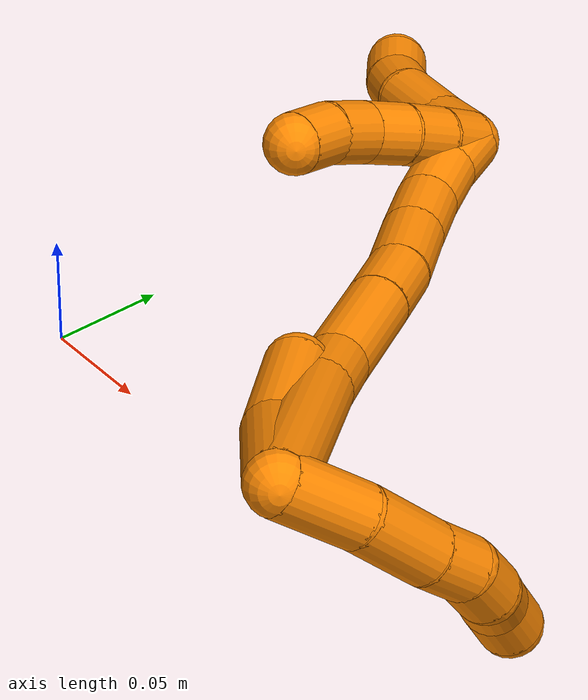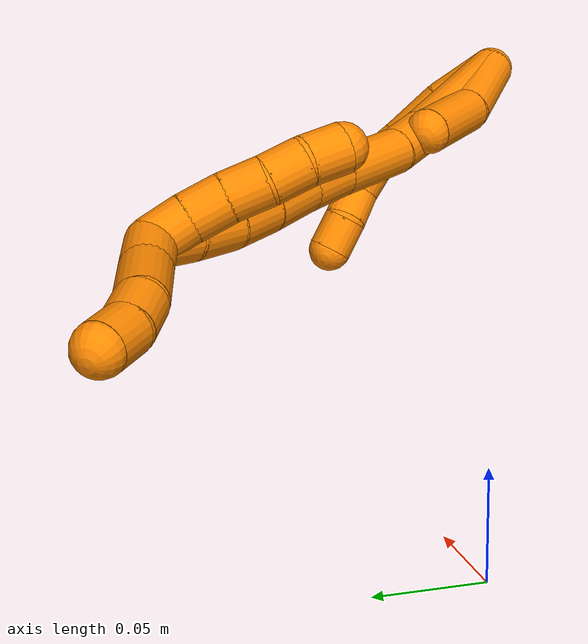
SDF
<sdf version="1.7">
 <world name="default">
  <model name="19">
   <static>0</static>
   <link name="19">
    <collision name="collision-cylinder-e_1_2_8">
     <pose>0.012902 0.010135 -0.005756 -2.0873 0.83612 -1.30378</pose>
     <geometry><cylinder><radius>0.0125</radius><length>0.034774</length></cylinder></geometry>
     <surface>
      <friction><ode><mu>1.16</mu><mu2>1.16</mu2><slip1>0</slip1><slip2>0</slip2></ode></friction>
      <contact><ode><kp>1e+06</kp><kd>1</kd><max_vel>0</max_vel><min_depth>0.001</min_depth></ode></contact>
     </surface>
    </collision>
    <visual name="visual-cylinder-e_1_2_8">
     <pose>0.012902 0.010135 -0.005756 -2.0873 0.83612 -1.30378</pose>
     <geometry><cylinder><radius>0.0125</radius><length>0.034774</length></cylinder></geometry>
     <material><ambient>0.996078 0.537255 0 1</ambient></material>
    </visual>
    <collision name="collision-cylinder-e_2_8_9">
     <pose>0.039117 0.028082 -0.01881 -2.32224 0.894214 -1.66975</pose>
     <geometry><cylinder><radius>0.0125</radius><length>0.034148</length></cylinder></geometry>
     <surface>
      <friction><ode><mu>1.16</mu><mu2>1.16</mu2><slip1>0</slip1><slip2>0</slip2></ode></friction>
      <contact><ode><kp>1e+06</kp><kd>1</kd><max_vel>0</max_vel><min_depth>0.001</min_depth></ode></contact>
     </surface>
    </collision>
    <visual name="visual-cylinder-e_2_8_9">
     <pose>0.039117 0.028082 -0.01881 -2.32224 0.894214 -1.66975</pose>
     <geometry><cylinder><radius>0.0125</radius><length>0.034148</length></cylinder></geometry>
     <material><ambient>0.996078 0.537255 0 1</ambient></material>
    </visual>
    <collision name="collision-cylinder-e_3_9_10">
     <pose>0.059689 0.040736 -0.031119 -2.37323 0.805841 -1.62369</pose>
     <geometry><cylinder><radius>0.0125</radius><length>0.020124</length></cylinder></geometry>
     <surface>
      <friction><ode><mu>1.16</mu><mu2>1.16</mu2><slip1>0</slip1><slip2>0</slip2></ode></friction>
      <contact><ode><kp>1e+06</kp><kd>1</kd><max_vel>0</max_vel><min_depth>0.001</min_depth></ode></contact>
     </surface>
    </collision>
    <visual name="visual-cylinder-e_3_9_10">
     <pose>0.059689 0.040736 -0.031119 -2.37323 0.805841 -1.62369</pose>
     <geometry><cylinder><radius>0.0125</radius><length>0.020124</length></cylinder></geometry>
     <material><ambient>0.996078 0.537255 0 1</ambient></material>
    </visual>
    <collision name="collision-cylinder-e_4_10_11">
     <pose>0.074733 0.047328 -0.042221 -2.86185 0.887513 -2.56571</pose>
     <geometry><cylinder><radius>0.0125</radius><length>0.020079</length></cylinder></geometry>
     <surface>
      <friction><ode><mu>1.16</mu><mu2>1.16</mu2><slip1>0</slip1><slip2>0</slip2></ode></friction>
      <contact><ode><kp>1e+06</kp><kd>1</kd><max_vel>0</max_vel><min_depth>0.001</min_depth></ode></contact>
     </surface>
    </collision>
    <visual name="visual-cylinder-e_4_10_11">
     <pose>0.074733 0.047328 -0.042221 -2.86185 0.887513 -2.56571</pose>
     <geometry><cylinder><radius>0.0125</radius><length>0.020079</length></cylinder></geometry>
     <material><ambient>0.996078 0.537255 0 1</ambient></material>
    </visual>
    <collision name="collision-cylinder-e_5_11_12">
     <pose>0.088408 0.049046 -0.056562 3.13767 0.620035 3.12934</pose>
     <geometry><cylinder><radius>0.0125</radius><length>0.020272</length></cylinder></geometry>
     <surface>
      <friction><ode><mu>1.16</mu><mu2>1.16</mu2><slip1>0</slip1><slip2>0</slip2></ode></friction>
      <contact><ode><kp>1e+06</kp><kd>1</kd><max_vel>0</max_vel><min_depth>0.001</min_depth></ode></contact>
     </surface>
    </collision>
    <visual name="visual-cylinder-e_5_11_12">
     <pose>0.088408 0.049046 -0.056562 3.13767 0.620035 3.12934</pose>
     <geometry><cylinder><radius>0.0125</radius><length>0.020272</length></cylinder></geometry>
     <material><ambient>0.996078 0.537255 0 1</ambient></material>
    </visual>
    <collision name="collision-cylinder-e_6_12_6">
     <pose>0.102105 0.049957 -0.071466 -3.00073 0.860005 -2.83633</pose>
     <geometry><cylinder><radius>0.0125</radius><length>0.020603</length></cylinder></geometry>
     <surface>
      <friction><ode><mu>1.16</mu><mu2>1.16</mu2><slip1>0</slip1><slip2>0</slip2></ode></friction>
      <contact><ode><kp>1e+06</kp><kd>1</kd><max_vel>0</max_vel><min_depth>0.001</min_depth></ode></contact>
     </surface>
    </collision>
    <visual name="visual-cylinder-e_6_12_6">
     <pose>0.102105 0.049957 -0.071466 -3.00073 0.860005 -2.83633</pose>
     <geometry><cylinder><radius>0.0125</radius><length>0.020603</length></cylinder></geometry>
     <material><ambient>0.996078 0.537255 0 1</ambient></material>
    </visual>
    <collision name="collision-cylinder-e_1_2_13">
     <pose>0.000536 0.000541 -0.026799 -3.12142 0.019986 -1.56175</pose>
     <geometry><cylinder><radius>0.0125</radius><length>0.053619</length></cylinder></geometry>
     <surface>
      <friction><ode><mu>1.16</mu><mu2>1.16</mu2><slip1>0</slip1><slip2>0</slip2></ode></friction>
      <contact><ode><kp>1e+06</kp><kd>1</kd><max_vel>0</max_vel><min_depth>0.001</min_depth></ode></contact>
     </surface>
    </collision>
    <visual name="visual-cylinder-e_1_2_13">
     <pose>0.000536 0.000541 -0.026799 -3.12142 0.019986 -1.56175</pose>
     <geometry><cylinder><radius>0.0125</radius><length>0.053619</length></cylinder></geometry>
     <material><ambient>0.996078 0.537255 0 1</ambient></material>
    </visual>
    <collision name="collision-cylinder-e_2_13_5">
     <pose>-0.001413 0.007294 -0.075802 -2.86875 -0.107356 0.746162</pose>
     <geometry><cylinder><radius>0.0125</radius><length>0.046381</length></cylinder></geometry>
     <surface>
      <friction><ode><mu>1.16</mu><mu2>1.16</mu2><slip1>0</slip1><slip2>0</slip2></ode></friction>
      <contact><ode><kp>1e+06</kp><kd>1</kd><max_vel>0</max_vel><min_depth>0.001</min_depth></ode></contact>
     </surface>
    </collision>
    <visual name="visual-cylinder-e_2_13_5">
     <pose>-0.001413 0.007294 -0.075802 -2.86875 -0.107356 0.746162</pose>
     <geometry><cylinder><radius>0.0125</radius><length>0.046381</length></cylinder></geometry>
     <material><ambient>0.996078 0.537255 0 1</ambient></material>
    </visual>
    <collision name="collision-cylinder-e_1_2_14">
     <pose>0.002125 0.009255 -0.044201 -2.93519 0.047021 -0.446533</pose>
     <geometry><cylinder><radius>0.0125</radius><length>0.090419</length></cylinder></geometry>
     <surface>
      <friction><ode><mu>1.16</mu><mu2>1.16</mu2><slip1>0</slip1><slip2>0</slip2></ode></friction>
      <contact><ode><kp>1e+06</kp><kd>1</kd><max_vel>0</max_vel><min_depth>0.001</min_depth></ode></contact>
     </surface>
    </collision>
    <visual name="visual-cylinder-e_1_2_14">
     <pose>0.002125 0.009255 -0.044201 -2.93519 0.047021 -0.446533</pose>
     <geometry><cylinder><radius>0.0125</radius><length>0.090419</length></cylinder></geometry>
     <material><ambient>0.996078 0.537255 0 1</ambient></material>
    </visual>
    <collision name="collision-cylinder-e_2_14_15">
     <pose>0.004935 0.022132 -0.100993 -2.86145 0.052259 -0.366574</pose>
     <geometry><cylinder><radius>0.0125</radius><length>0.026239</length></cylinder></geometry>
     <surface>
      <friction><ode><mu>1.16</mu><mu2>1.16</mu2><slip1>0</slip1><slip2>0</slip2></ode></friction>
      <contact><ode><kp>1e+06</kp><kd>1</kd><max_vel>0</max_vel><min_depth>0.001</min_depth></ode></contact>
     </surface>
    </collision>
    <visual name="visual-cylinder-e_2_14_15">
     <pose>0.004935 0.022132 -0.100993 -2.86145 0.052259 -0.366574</pose>
     <geometry><cylinder><radius>0.0125</radius><length>0.026239</length></cylinder></geometry>
     <material><ambient>0.996078 0.537255 0 1</ambient></material>
    </visual>
    <collision name="collision-cylinder-e_3_15_16">
     <pose>0.004709 0.035689 -0.13502 -2.70762 -0.038579 0.174574</pose>
     <geometry><cylinder><radius>0.0125</radius><length>0.047287</length></cylinder></geometry>
     <surface>
      <friction><ode><mu>1.16</mu><mu2>1.16</mu2><slip1>0</slip1><slip2>0</slip2></ode></friction>
      <contact><ode><kp>1e+06</kp><kd>1</kd><max_vel>0</max_vel><min_depth>0.001</min_depth></ode></contact>
     </surface>
    </collision>
    <visual name="visual-cylinder-e_3_15_16">
     <pose>0.004709 0.035689 -0.13502 -2.70762 -0.038579 0.174574</pose>
     <geometry><cylinder><radius>0.0125</radius><length>0.047287</length></cylinder></geometry>
     <material><ambient>0.996078 0.537255 0 1</ambient></material>
    </visual>
    <collision name="collision-cylinder-e_4_16_17">
     <pose>0.003486 0.05105 -0.169405 -2.74471 -0.022123 0.109909</pose>
     <geometry><cylinder><radius>0.0125</radius><length>0.028088</length></cylinder></geometry>
     <surface>
      <friction><ode><mu>1.16</mu><mu2>1.16</mu2><slip1>0</slip1><slip2>0</slip2></ode></friction>
      <contact><ode><kp>1e+06</kp><kd>1</kd><max_vel>0</max_vel><min_depth>0.001</min_depth></ode></contact>
     </surface>
    </collision>
    <visual name="visual-cylinder-e_4_16_17">
     <pose>0.003486 0.05105 -0.169405 -2.74471 -0.022123 0.109909</pose>
     <geometry><cylinder><radius>0.0125</radius><length>0.028088</length></cylinder></geometry>
     <material><ambient>0.996078 0.537255 0 1</ambient></material>
    </visual>
    <collision name="collision-cylinder-e_5_17_18">
     <pose>0.00183 0.061244 -0.198045 -2.84669 -0.081863 0.538095</pose>
     <geometry><cylinder><radius>0.0125</radius><length>0.032908</length></cylinder></geometry>
     <surface>
      <friction><ode><mu>1.16</mu><mu2>1.16</mu2><slip1>0</slip1><slip2>0</slip2></ode></friction>
      <contact><ode><kp>1e+06</kp><kd>1</kd><max_vel>0</max_vel><min_depth>0.001</min_depth></ode></contact>
     </surface>
    </collision>
    <visual name="visual-cylinder-e_5_17_18">
     <pose>0.00183 0.061244 -0.198045 -2.84669 -0.081863 0.538095</pose>
     <geometry><cylinder><radius>0.0125</radius><length>0.032908</length></cylinder></geometry>
     <material><ambient>0.996078 0.537255 0 1</ambient></material>
    </visual>
    <collision name="collision-cylinder-e_6_18_19">
     <pose>-0.000836 0.070592 -0.226628 -2.8001 -0.096219 0.544599</pose>
     <geometry><cylinder><radius>0.0125</radius><length>0.027492</length></cylinder></geometry>
     <surface>
      <friction><ode><mu>1.16</mu><mu2>1.16</mu2><slip1>0</slip1><slip2>0</slip2></ode></friction>
      <contact><ode><kp>1e+06</kp><kd>1</kd><max_vel>0</max_vel><min_depth>0.001</min_depth></ode></contact>
     </surface>
    </collision>
    <visual name="visual-cylinder-e_6_18_19">
     <pose>-0.000836 0.070592 -0.226628 -2.8001 -0.096219 0.544599</pose>
     <geometry><cylinder><radius>0.0125</radius><length>0.027492</length></cylinder></geometry>
     <material><ambient>0.996078 0.537255 0 1</ambient></material>
    </visual>
    <collision name="collision-cylinder-e_7_19_20">
     <pose>-0.003852 0.080911 -0.250949 -2.67633 -0.131799 0.543331</pose>
     <geometry><cylinder><radius>0.0125</radius><length>0.025799</length></cylinder></geometry>
     <surface>
      <friction><ode><mu>1.16</mu><mu2>1.16</mu2><slip1>0</slip1><slip2>0</slip2></ode></friction>
      <contact><ode><kp>1e+06</kp><kd>1</kd><max_vel>0</max_vel><min_depth>0.001</min_depth></ode></contact>
     </surface>
    </collision>
    <visual name="visual-cylinder-e_7_19_20">
     <pose>-0.003852 0.080911 -0.250949 -2.67633 -0.131799 0.543331</pose>
     <geometry><cylinder><radius>0.0125</radius><length>0.025799</length></cylinder></geometry>
     <material><ambient>0.996078 0.537255 0 1</ambient></material>
    </visual>
    <collision name="collision-cylinder-e_8_20_1">
     <pose>-0.006532 0.092741 -0.271342 -2.54472 -0.090666 0.292823</pose>
     <geometry><cylinder><radius>0.0125</radius><length>0.021768</length></cylinder></geometry>
     <surface>
      <friction><ode><mu>1.16</mu><mu2>1.16</mu2><slip1>0</slip1><slip2>0</slip2></ode></friction>
      <contact><ode><kp>1e+06</kp><kd>1</kd><max_vel>0</max_vel><min_depth>0.001</min_depth></ode></contact>
     </surface>
    </collision>
    <visual name="visual-cylinder-e_8_20_1">
     <pose>-0.006532 0.092741 -0.271342 -2.54472 -0.090666 0.292823</pose>
     <geometry><cylinder><radius>0.0125</radius><length>0.021768</length></cylinder></geometry>
     <material><ambient>0.996078 0.537255 0 1</ambient></material>
    </visual>
    <collision name="collision-cylinder-e_1_1_21">
     <pose>-0.012514 0.09351 -0.273474 0.661839 -0.523201 -0.183447</pose>
     <geometry><cylinder><radius>0.0125</radius><length>0.02</length></cylinder></geometry>
     <surface>
      <friction><ode><mu>1.16</mu><mu2>1.16</mu2><slip1>0</slip1><slip2>0</slip2></ode></friction>
      <contact><ode><kp>1e+06</kp><kd>1</kd><max_vel>0</max_vel><min_depth>0.001</min_depth></ode></contact>
     </surface>
    </collision>
    <visual name="visual-cylinder-e_1_1_21">
     <pose>-0.012514 0.09351 -0.273474 0.661839 -0.523201 -0.183447</pose>
     <geometry><cylinder><radius>0.0125</radius><length>0.02</length></cylinder></geometry>
     <material><ambient>0.996078 0.537255 0 1</ambient></material>
    </visual>
    <collision name="collision-cylinder-e_2_21_22">
     <pose>-0.022481 0.082004 -0.260552 0.793022 -0.520098 -0.221888</pose>
     <geometry><cylinder><radius>0.0125</radius><length>0.02</length></cylinder></geometry>
     <surface>
      <friction><ode><mu>1.16</mu><mu2>1.16</mu2><slip1>0</slip1><slip2>0</slip2></ode></friction>
      <contact><ode><kp>1e+06</kp><kd>1</kd><max_vel>0</max_vel><min_depth>0.001</min_depth></ode></contact>
     </surface>
    </collision>
    <visual name="visual-cylinder-e_2_21_22">
     <pose>-0.022481 0.082004 -0.260552 0.793022 -0.520098 -0.221888</pose>
     <geometry><cylinder><radius>0.0125</radius><length>0.02</length></cylinder></geometry>
     <material><ambient>0.996078 0.537255 0 1</ambient></material>
    </visual>
    <collision name="collision-cylinder-e_3_22_23">
     <pose>-0.032188 0.068827 -0.249111 0.91761 -0.493607 -0.247624</pose>
     <geometry><cylinder><radius>0.0125</radius><length>0.02</length></cylinder></geometry>
     <surface>
      <friction><ode><mu>1.16</mu><mu2>1.16</mu2><slip1>0</slip1><slip2>0</slip2></ode></friction>
      <contact><ode><kp>1e+06</kp><kd>1</kd><max_vel>0</max_vel><min_depth>0.001</min_depth></ode></contact>
     </surface>
    </collision>
    <visual name="visual-cylinder-e_3_22_23">
     <pose>-0.032188 0.068827 -0.249111 0.91761 -0.493607 -0.247624</pose>
     <geometry><cylinder><radius>0.0125</radius><length>0.02</length></cylinder></geometry>
     <material><ambient>0.996078 0.537255 0 1</ambient></material>
    </visual>
    <collision name="collision-cylinder-e_4_23_24">
     <pose>-0.041134 0.055664 -0.237109 0.747972 -0.434222 -0.172711</pose>
     <geometry><cylinder><radius>0.0125</radius><length>0.02</length></cylinder></geometry>
     <surface>
      <friction><ode><mu>1.16</mu><mu2>1.16</mu2><slip1>0</slip1><slip2>0</slip2></ode></friction>
      <contact><ode><kp>1e+06</kp><kd>1</kd><max_vel>0</max_vel><min_depth>0.001</min_depth></ode></contact>
     </surface>
    </collision>
    <visual name="visual-cylinder-e_4_23_24">
     <pose>-0.041134 0.055664 -0.237109 0.747972 -0.434222 -0.172711</pose>
     <geometry><cylinder><radius>0.0125</radius><length>0.02</length></cylinder></geometry>
     <material><ambient>0.996078 0.537255 0 1</ambient></material>
    </visual>
    <collision name="collision-cylinder-e_5_24_4">
     <pose>-0.047686 0.043191 -0.223057 0.705347 -0.236782 -0.087504</pose>
     <geometry><cylinder><radius>0.0125</radius><length>0.02</length></cylinder></geometry>
     <surface>
      <friction><ode><mu>1.16</mu><mu2>1.16</mu2><slip1>0</slip1><slip2>0</slip2></ode></friction>
      <contact><ode><kp>1e+06</kp><kd>1</kd><max_vel>0</max_vel><min_depth>0.001</min_depth></ode></contact>
     </surface>
    </collision>
    <visual name="visual-cylinder-e_5_24_4">
     <pose>-0.047686 0.043191 -0.223057 0.705347 -0.236782 -0.087504</pose>
     <geometry><cylinder><radius>0.0125</radius><length>0.02</length></cylinder></geometry>
     <material><ambient>0.996078 0.537255 0 1</ambient></material>
    </visual>
    <collision name="collision-cylinder-e_1_1_25">
     <pose>-0.009433 0.095217 -0.292043 2.84266 -0.154688 -0.95057</pose>
     <geometry><cylinder><radius>0.0125</radius><length>0.024858</length></cylinder></geometry>
     <surface>
      <friction><ode><mu>1.16</mu><mu2>1.16</mu2><slip1>0</slip1><slip2>0</slip2></ode></friction>
      <contact><ode><kp>1e+06</kp><kd>1</kd><max_vel>0</max_vel><min_depth>0.001</min_depth></ode></contact>
     </surface>
    </collision>
    <visual name="visual-cylinder-e_1_1_25">
     <pose>-0.009433 0.095217 -0.292043 2.84266 -0.154688 -0.95057</pose>
     <geometry><cylinder><radius>0.0125</radius><length>0.024858</length></cylinder></geometry>
     <material><ambient>0.996078 0.537255 0 1</ambient></material>
    </visual>
    <collision name="collision-cylinder-e_2_25_26">
     <pose>-0.015488 0.086591 -0.319255 2.82858 -0.249208 -1.34184</pose>
     <geometry><cylinder><radius>0.0125</radius><length>0.03357</length></cylinder></geometry>
     <surface>
      <friction><ode><mu>1.16</mu><mu2>1.16</mu2><slip1>0</slip1><slip2>0</slip2></ode></friction>
      <contact><ode><kp>1e+06</kp><kd>1</kd><max_vel>0</max_vel><min_depth>0.001</min_depth></ode></contact>
     </surface>
    </collision>
    <visual name="visual-cylinder-e_2_25_26">
     <pose>-0.015488 0.086591 -0.319255 2.82858 -0.249208 -1.34184</pose>
     <geometry><cylinder><radius>0.0125</radius><length>0.03357</length></cylinder></geometry>
     <material><ambient>0.996078 0.537255 0 1</ambient></material>
    </visual>
    <collision name="collision-cylinder-e_3_26_27">
     <pose>-0.020678 0.080305 -0.345168 3.01979 -0.099564 -1.37017</pose>
     <geometry><cylinder><radius>0.0125</radius><length>0.021134</length></cylinder></geometry>
     <surface>
      <friction><ode><mu>1.16</mu><mu2>1.16</mu2><slip1>0</slip1><slip2>0</slip2></ode></friction>
      <contact><ode><kp>1e+06</kp><kd>1</kd><max_vel>0</max_vel><min_depth>0.001</min_depth></ode></contact>
     </surface>
    </collision>
    <visual name="visual-cylinder-e_3_26_27">
     <pose>-0.020678 0.080305 -0.345168 3.01979 -0.099564 -1.37017</pose>
     <geometry><cylinder><radius>0.0125</radius><length>0.021134</length></cylinder></geometry>
     <material><ambient>0.996078 0.537255 0 1</ambient></material>
    </visual>
    <collision name="collision-cylinder-e_4_27_3">
     <pose>-0.023097 0.08055 -0.365617 -2.99068 -0.134365 1.45451</pose>
     <geometry><cylinder><radius>0.0125</radius><length>0.020438</length></cylinder></geometry>
     <surface>
      <friction><ode><mu>1.16</mu><mu2>1.16</mu2><slip1>0</slip1><slip2>0</slip2></ode></friction>
      <contact><ode><kp>1e+06</kp><kd>1</kd><max_vel>0</max_vel><min_depth>0.001</min_depth></ode></contact>
     </surface>
    </collision>
    <visual name="visual-cylinder-e_4_27_3">
     <pose>-0.023097 0.08055 -0.365617 -2.99068 -0.134365 1.45451</pose>
     <geometry><cylinder><radius>0.0125</radius><length>0.020438</length></cylinder></geometry>
     <material><ambient>0.996078 0.537255 0 1</ambient></material>
    </visual>
    <collision name="collision-sphere-3">
     <pose>-0.024466 0.082072 -0.375629 0 -0 0</pose>
     <geometry><sphere><radius>0.0125</radius></sphere></geometry>
     <surface>
      <friction><ode><mu>1.16</mu><mu2>1.16</mu2><slip1>0</slip1><slip2>0</slip2></ode></friction>
      <contact><ode><kp>1e+06</kp><kd>1</kd><max_vel>0</max_vel><min_depth>0.001</min_depth></ode></contact>
     </surface>
    </collision>
    <visual name="visual-sphere-3">
     <pose>-0.024466 0.082072 -0.375629 0 -0 0</pose>
     <geometry><sphere><radius>0.0125</radius></sphere></geometry>
     <material><ambient>0.996078 0.537255 0 1</ambient></material>
    </visual>
    <collision name="collision-sphere-27">
     <pose>-0.021728 0.079027 -0.355605 0 -0 0</pose>
     <geometry><sphere><radius>0.0125</radius></sphere></geometry>
     <surface>
      <friction><ode><mu>1.16</mu><mu2>1.16</mu2><slip1>0</slip1><slip2>0</slip2></ode></friction>
      <contact><ode><kp>1e+06</kp><kd>1</kd><max_vel>0</max_vel><min_depth>0.001</min_depth></ode></contact>
     </surface>
    </collision>
    <visual name="visual-sphere-27">
     <pose>-0.021728 0.079027 -0.355605 0 -0 0</pose>
     <geometry><sphere><radius>0.0125</radius></sphere></geometry>
     <material><ambient>0.996078 0.537255 0 1</ambient></material>
    </visual>
    <collision name="collision-sphere-26">
     <pose>-0.019627 0.081582 -0.334731 0 -0 0</pose>
     <geometry><sphere><radius>0.0125</radius></sphere></geometry>
     <surface>
      <friction><ode><mu>1.16</mu><mu2>1.16</mu2><slip1>0</slip1><slip2>0</slip2></ode></friction>
      <contact><ode><kp>1e+06</kp><kd>1</kd><max_vel>0</max_vel><min_depth>0.001</min_depth></ode></contact>
     </surface>
    </collision>
    <visual name="visual-sphere-26">
     <pose>-0.019627 0.081582 -0.334731 0 -0 0</pose>
     <geometry><sphere><radius>0.0125</radius></sphere></geometry>
     <material><ambient>0.996078 0.537255 0 1</ambient></material>
    </visual>
    <collision name="collision-sphere-25">
     <pose>-0.011348 0.0916 -0.303779 0 -0 0</pose>
     <geometry><sphere><radius>0.0125</radius></sphere></geometry>
     <surface>
      <friction><ode><mu>1.16</mu><mu2>1.16</mu2><slip1>0</slip1><slip2>0</slip2></ode></friction>
      <contact><ode><kp>1e+06</kp><kd>1</kd><max_vel>0</max_vel><min_depth>0.001</min_depth></ode></contact>
     </surface>
    </collision>
    <visual name="visual-sphere-25">
     <pose>-0.011348 0.0916 -0.303779 0 -0 0</pose>
     <geometry><sphere><radius>0.0125</radius></sphere></geometry>
     <material><ambient>0.996078 0.537255 0 1</ambient></material>
    </visual>
    <collision name="collision-sphere-4">
     <pose>-0.050032 0.036889 -0.215656 0 -0 0</pose>
     <geometry><sphere><radius>0.0125</radius></sphere></geometry>
     <surface>
      <friction><ode><mu>1.16</mu><mu2>1.16</mu2><slip1>0</slip1><slip2>0</slip2></ode></friction>
      <contact><ode><kp>1e+06</kp><kd>1</kd><max_vel>0</max_vel><min_depth>0.001</min_depth></ode></contact>
     </surface>
    </collision>
    <visual name="visual-sphere-4">
     <pose>-0.050032 0.036889 -0.215656 0 -0 0</pose>
     <geometry><sphere><radius>0.0125</radius></sphere></geometry>
     <material><ambient>0.996078 0.537255 0 1</ambient></material>
    </visual>
    <collision name="collision-sphere-24">
     <pose>-0.045341 0.049493 -0.230458 0 -0 0</pose>
     <geometry><sphere><radius>0.0125</radius></sphere></geometry>
     <surface>
      <friction><ode><mu>1.16</mu><mu2>1.16</mu2><slip1>0</slip1><slip2>0</slip2></ode></friction>
      <contact><ode><kp>1e+06</kp><kd>1</kd><max_vel>0</max_vel><min_depth>0.001</min_depth></ode></contact>
     </surface>
    </collision>
    <visual name="visual-sphere-24">
     <pose>-0.045341 0.049493 -0.230458 0 -0 0</pose>
     <geometry><sphere><radius>0.0125</radius></sphere></geometry>
     <material><ambient>0.996078 0.537255 0 1</ambient></material>
    </visual>
    <collision name="collision-sphere-23">
     <pose>-0.036926 0.061834 -0.243759 0 -0 0</pose>
     <geometry><sphere><radius>0.0125</radius></sphere></geometry>
     <surface>
      <friction><ode><mu>1.16</mu><mu2>1.16</mu2><slip1>0</slip1><slip2>0</slip2></ode></friction>
      <contact><ode><kp>1e+06</kp><kd>1</kd><max_vel>0</max_vel><min_depth>0.001</min_depth></ode></contact>
     </surface>
    </collision>
    <visual name="visual-sphere-23">
     <pose>-0.036926 0.061834 -0.243759 0 -0 0</pose>
     <geometry><sphere><radius>0.0125</radius></sphere></geometry>
     <material><ambient>0.996078 0.537255 0 1</ambient></material>
    </visual>
    <collision name="collision-sphere-22">
     <pose>-0.02745 0.075821 -0.254463 0 -0 0</pose>
     <geometry><sphere><radius>0.0125</radius></sphere></geometry>
     <surface>
      <friction><ode><mu>1.16</mu><mu2>1.16</mu2><slip1>0</slip1><slip2>0</slip2></ode></friction>
      <contact><ode><kp>1e+06</kp><kd>1</kd><max_vel>0</max_vel><min_depth>0.001</min_depth></ode></contact>
     </surface>
    </collision>
    <visual name="visual-sphere-22">
     <pose>-0.02745 0.075821 -0.254463 0 -0 0</pose>
     <geometry><sphere><radius>0.0125</radius></sphere></geometry>
     <material><ambient>0.996078 0.537255 0 1</ambient></material>
    </visual>
    <collision name="collision-sphere-21">
     <pose>-0.017511 0.088186 -0.266641 0 -0 0</pose>
     <geometry><sphere><radius>0.0125</radius></sphere></geometry>
     <surface>
      <friction><ode><mu>1.16</mu><mu2>1.16</mu2><slip1>0</slip1><slip2>0</slip2></ode></friction>
      <contact><ode><kp>1e+06</kp><kd>1</kd><max_vel>0</max_vel><min_depth>0.001</min_depth></ode></contact>
     </surface>
    </collision>
    <visual name="visual-sphere-21">
     <pose>-0.017511 0.088186 -0.266641 0 -0 0</pose>
     <geometry><sphere><radius>0.0125</radius></sphere></geometry>
     <material><ambient>0.996078 0.537255 0 1</ambient></material>
    </visual>
    <collision name="collision-sphere-1">
     <pose>-0.007518 0.098833 -0.280308 0 -0 0</pose>
     <geometry><sphere><radius>0.0125</radius></sphere></geometry>
     <surface>
      <friction><ode><mu>1.16</mu><mu2>1.16</mu2><slip1>0</slip1><slip2>0</slip2></ode></friction>
      <contact><ode><kp>1e+06</kp><kd>1</kd><max_vel>0</max_vel><min_depth>0.001</min_depth></ode></contact>
     </surface>
    </collision>
    <visual name="visual-sphere-1">
     <pose>-0.007518 0.098833 -0.280308 0 -0 0</pose>
     <geometry><sphere><radius>0.0125</radius></sphere></geometry>
     <material><ambient>0.996078 0.537255 0 1</ambient></material>
    </visual>
    <collision name="collision-sphere-12">
     <pose>0.094298 0.049013 -0.064811 0 -0 0</pose>
     <geometry><sphere><radius>0.0125</radius></sphere></geometry>
     <surface>
      <friction><ode><mu>1.16</mu><mu2>1.16</mu2><slip1>0</slip1><slip2>0</slip2></ode></friction>
      <contact><ode><kp>1e+06</kp><kd>1</kd><max_vel>0</max_vel><min_depth>0.001</min_depth></ode></contact>
     </surface>
    </collision>
    <visual name="visual-sphere-12">
     <pose>0.094298 0.049013 -0.064811 0 -0 0</pose>
     <geometry><sphere><radius>0.0125</radius></sphere></geometry>
     <material><ambient>0.996078 0.537255 0 1</ambient></material>
    </visual>
    <collision name="collision-sphere-11">
     <pose>0.082519 0.049078 -0.048313 0 -0 0</pose>
     <geometry><sphere><radius>0.0125</radius></sphere></geometry>
     <surface>
      <friction><ode><mu>1.16</mu><mu2>1.16</mu2><slip1>0</slip1><slip2>0</slip2></ode></friction>
      <contact><ode><kp>1e+06</kp><kd>1</kd><max_vel>0</max_vel><min_depth>0.001</min_depth></ode></contact>
     </surface>
    </collision>
    <visual name="visual-sphere-11">
     <pose>0.082519 0.049078 -0.048313 0 -0 0</pose>
     <geometry><sphere><radius>0.0125</radius></sphere></geometry>
     <material><ambient>0.996078 0.537255 0 1</ambient></material>
    </visual>
    <collision name="collision-sphere-10">
     <pose>0.066948 0.045578 -0.036129 0 -0 0</pose>
     <geometry><sphere><radius>0.0125</radius></sphere></geometry>
     <surface>
      <friction><ode><mu>1.16</mu><mu2>1.16</mu2><slip1>0</slip1><slip2>0</slip2></ode></friction>
      <contact><ode><kp>1e+06</kp><kd>1</kd><max_vel>0</max_vel><min_depth>0.001</min_depth></ode></contact>
     </surface>
    </collision>
    <visual name="visual-sphere-10">
     <pose>0.066948 0.045578 -0.036129 0 -0 0</pose>
     <geometry><sphere><radius>0.0125</radius></sphere></geometry>
     <material><ambient>0.996078 0.537255 0 1</ambient></material>
    </visual>
    <collision name="collision-sphere-9">
     <pose>0.05243 0.035893 -0.026109 0 -0 0</pose>
     <geometry><sphere><radius>0.0125</radius></sphere></geometry>
     <surface>
      <friction><ode><mu>1.16</mu><mu2>1.16</mu2><slip1>0</slip1><slip2>0</slip2></ode></friction>
      <contact><ode><kp>1e+06</kp><kd>1</kd><max_vel>0</max_vel><min_depth>0.001</min_depth></ode></contact>
     </surface>
    </collision>
    <visual name="visual-sphere-9">
     <pose>0.05243 0.035893 -0.026109 0 -0 0</pose>
     <geometry><sphere><radius>0.0125</radius></sphere></geometry>
     <material><ambient>0.996078 0.537255 0 1</ambient></material>
    </visual>
    <collision name="collision-sphere-2">
     <geometry><sphere><radius>0.0125</radius></sphere></geometry>
     <surface>
      <friction><ode><mu>1.16</mu><mu2>1.16</mu2><slip1>0</slip1><slip2>0</slip2></ode></friction>
      <contact><ode><kp>1e+06</kp><kd>1</kd><max_vel>0</max_vel><min_depth>0.001</min_depth></ode></contact>
     </surface>
    </collision>
    <visual name="visual-sphere-2">
     <geometry><sphere><radius>0.0125</radius></sphere></geometry>
     <material><ambient>0.996078 0.537255 0 1</ambient></material>
    </visual>
    <collision name="collision-sphere-19">
     <pose>-0.002157 0.075174 -0.239521 0 -0 0</pose>
     <geometry><sphere><radius>0.0125</radius></sphere></geometry>
     <surface>
      <friction><ode><mu>1.16</mu><mu2>1.16</mu2><slip1>0</slip1><slip2>0</slip2></ode></friction>
      <contact><ode><kp>1e+06</kp><kd>1</kd><max_vel>0</max_vel><min_depth>0.001</min_depth></ode></contact>
     </surface>
    </collision>
    <visual name="visual-sphere-19">
     <pose>-0.002157 0.075174 -0.239521 0 -0 0</pose>
     <geometry><sphere><radius>0.0125</radius></sphere></geometry>
     <material><ambient>0.996078 0.537255 0 1</ambient></material>
    </visual>
    <collision name="collision-sphere-8">
     <pose>0.025804 0.02027 -0.011512 0 -0 0</pose>
     <geometry><sphere><radius>0.0125</radius></sphere></geometry>
     <surface>
      <friction><ode><mu>1.16</mu><mu2>1.16</mu2><slip1>0</slip1><slip2>0</slip2></ode></friction>
      <contact><ode><kp>1e+06</kp><kd>1</kd><max_vel>0</max_vel><min_depth>0.001</min_depth></ode></contact>
     </surface>
    </collision>
    <visual name="visual-sphere-8">
     <pose>0.025804 0.02027 -0.011512 0 -0 0</pose>
     <geometry><sphere><radius>0.0125</radius></sphere></geometry>
     <material><ambient>0.996078 0.537255 0 1</ambient></material>
    </visual>
    <collision name="collision-sphere-6">
     <pose>0.109912 0.050901 -0.07812 0 -0 0</pose>
     <geometry><sphere><radius>0.0125</radius></sphere></geometry>
     <surface>
      <friction><ode><mu>1.16</mu><mu2>1.16</mu2><slip1>0</slip1><slip2>0</slip2></ode></friction>
      <contact><ode><kp>1e+06</kp><kd>1</kd><max_vel>0</max_vel><min_depth>0.001</min_depth></ode></contact>
     </surface>
    </collision>
    <visual name="visual-sphere-6">
     <pose>0.109912 0.050901 -0.07812 0 -0 0</pose>
     <geometry><sphere><radius>0.0125</radius></sphere></geometry>
     <material><ambient>0.996078 0.537255 0 1</ambient></material>
    </visual>
    <collision name="collision-sphere-13">
     <pose>0.001072 0.001081 -0.053597 0 -0 0</pose>
     <geometry><sphere><radius>0.0125</radius></sphere></geometry>
     <surface>
      <friction><ode><mu>1.16</mu><mu2>1.16</mu2><slip1>0</slip1><slip2>0</slip2></ode></friction>
      <contact><ode><kp>1e+06</kp><kd>1</kd><max_vel>0</max_vel><min_depth>0.001</min_depth></ode></contact>
     </surface>
    </collision>
    <visual name="visual-sphere-13">
     <pose>0.001072 0.001081 -0.053597 0 -0 0</pose>
     <geometry><sphere><radius>0.0125</radius></sphere></geometry>
     <material><ambient>0.996078 0.537255 0 1</ambient></material>
    </visual>
    <collision name="collision-sphere-5">
     <pose>-0.003898 0.013507 -0.098006 0 -0 0</pose>
     <geometry><sphere><radius>0.0125</radius></sphere></geometry>
     <surface>
      <friction><ode><mu>1.16</mu><mu2>1.16</mu2><slip1>0</slip1><slip2>0</slip2></ode></friction>
      <contact><ode><kp>1e+06</kp><kd>1</kd><max_vel>0</max_vel><min_depth>0.001</min_depth></ode></contact>
     </surface>
    </collision>
    <visual name="visual-sphere-5">
     <pose>-0.003898 0.013507 -0.098006 0 -0 0</pose>
     <geometry><sphere><radius>0.0125</radius></sphere></geometry>
     <material><ambient>0.996078 0.537255 0 1</ambient></material>
    </visual>
    <collision name="collision-sphere-14">
     <pose>0.00425 0.01851 -0.088402 0 -0 0</pose>
     <geometry><sphere><radius>0.0125</radius></sphere></geometry>
     <surface>
      <friction><ode><mu>1.16</mu><mu2>1.16</mu2><slip1>0</slip1><slip2>0</slip2></ode></friction>
      <contact><ode><kp>1e+06</kp><kd>1</kd><max_vel>0</max_vel><min_depth>0.001</min_depth></ode></contact>
     </surface>
    </collision>
    <visual name="visual-sphere-14">
     <pose>0.00425 0.01851 -0.088402 0 -0 0</pose>
     <geometry><sphere><radius>0.0125</radius></sphere></geometry>
     <material><ambient>0.996078 0.537255 0 1</ambient></material>
    </visual>
    <collision name="collision-sphere-15">
     <pose>0.005621 0.025755 -0.113584 0 -0 0</pose>
     <geometry><sphere><radius>0.0125</radius></sphere></geometry>
     <surface>
      <friction><ode><mu>1.16</mu><mu2>1.16</mu2><slip1>0</slip1><slip2>0</slip2></ode></friction>
      <contact><ode><kp>1e+06</kp><kd>1</kd><max_vel>0</max_vel><min_depth>0.001</min_depth></ode></contact>
     </surface>
    </collision>
    <visual name="visual-sphere-15">
     <pose>0.005621 0.025755 -0.113584 0 -0 0</pose>
     <geometry><sphere><radius>0.0125</radius></sphere></geometry>
     <material><ambient>0.996078 0.537255 0 1</ambient></material>
    </visual>
    <collision name="collision-sphere-16">
     <pose>0.003797 0.045623 -0.156456 0 -0 0</pose>
     <geometry><sphere><radius>0.0125</radius></sphere></geometry>
     <surface>
      <friction><ode><mu>1.16</mu><mu2>1.16</mu2><slip1>0</slip1><slip2>0</slip2></ode></friction>
      <contact><ode><kp>1e+06</kp><kd>1</kd><max_vel>0</max_vel><min_depth>0.001</min_depth></ode></contact>
     </surface>
    </collision>
    <visual name="visual-sphere-16">
     <pose>0.003797 0.045623 -0.156456 0 -0 0</pose>
     <geometry><sphere><radius>0.0125</radius></sphere></geometry>
     <material><ambient>0.996078 0.537255 0 1</ambient></material>
    </visual>
    <collision name="collision-sphere-17">
     <pose>0.003176 0.056477 -0.182354 0 -0 0</pose>
     <geometry><sphere><radius>0.0125</radius></sphere></geometry>
     <surface>
      <friction><ode><mu>1.16</mu><mu2>1.16</mu2><slip1>0</slip1><slip2>0</slip2></ode></friction>
      <contact><ode><kp>1e+06</kp><kd>1</kd><max_vel>0</max_vel><min_depth>0.001</min_depth></ode></contact>
     </surface>
    </collision>
    <visual name="visual-sphere-17">
     <pose>0.003176 0.056477 -0.182354 0 -0 0</pose>
     <geometry><sphere><radius>0.0125</radius></sphere></geometry>
     <material><ambient>0.996078 0.537255 0 1</ambient></material>
    </visual>
    <collision name="collision-sphere-18">
     <pose>0.000485 0.06601 -0.213736 0 -0 0</pose>
     <geometry><sphere><radius>0.0125</radius></sphere></geometry>
     <surface>
      <friction><ode><mu>1.16</mu><mu2>1.16</mu2><slip1>0</slip1><slip2>0</slip2></ode></friction>
      <contact><ode><kp>1e+06</kp><kd>1</kd><max_vel>0</max_vel><min_depth>0.001</min_depth></ode></contact>
     </surface>
    </collision>
    <visual name="visual-sphere-18">
     <pose>0.000485 0.06601 -0.213736 0 -0 0</pose>
     <geometry><sphere><radius>0.0125</radius></sphere></geometry>
     <material><ambient>0.996078 0.537255 0 1</ambient></material>
    </visual>
    <collision name="collision-sphere-20">
     <pose>-0.005547 0.086649 -0.262377 0 -0 0</pose>
     <geometry><sphere><radius>0.0125</radius></sphere></geometry>
     <surface>
      <friction><ode><mu>1.16</mu><mu2>1.16</mu2><slip1>0</slip1><slip2>0</slip2></ode></friction>
      <contact><ode><kp>1e+06</kp><kd>1</kd><max_vel>0</max_vel><min_depth>0.001</min_depth></ode></contact>
     </surface>
    </collision>
    <visual name="visual-sphere-20">
     <pose>-0.005547 0.086649 -0.262377 0 -0 0</pose>
     <geometry><sphere><radius>0.0125</radius></sphere></geometry>
     <material><ambient>0.996078 0.537255 0 1</ambient></material>
    </visual>
    <inertial>
     <pose>0.005333 0.04474 -0.147222 0 -0 0</pose>
     <mass>0.75</mass>
     <inertia>
      <ixx>5.7e-05</ixx>
      <ixy>0</ixy>
      <ixz>0</ixz>
      <iyy>-0.000112</iyy>
      <iyz>0</iyz>
      <izz>-7.2e-05</izz>
     </inertia>
    </inertial>
   </link>
   <pose>0.303419 -0.122912 0.178822 0.772455 1.08353 0.209046</pose>
  </model>
 </world>
</sdf>
